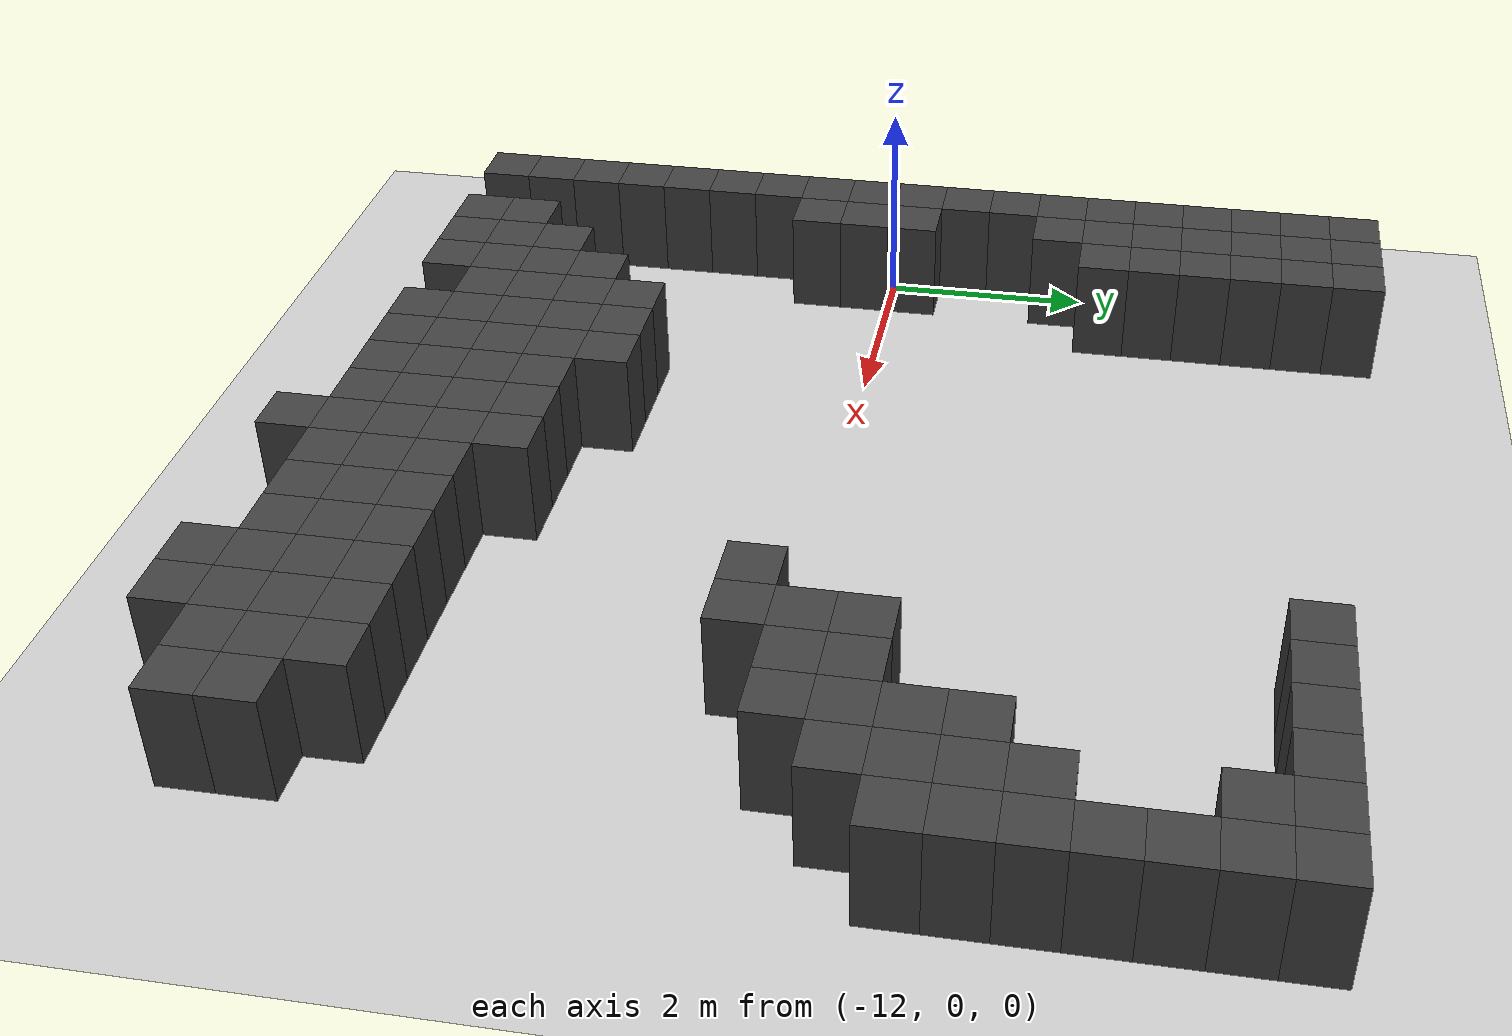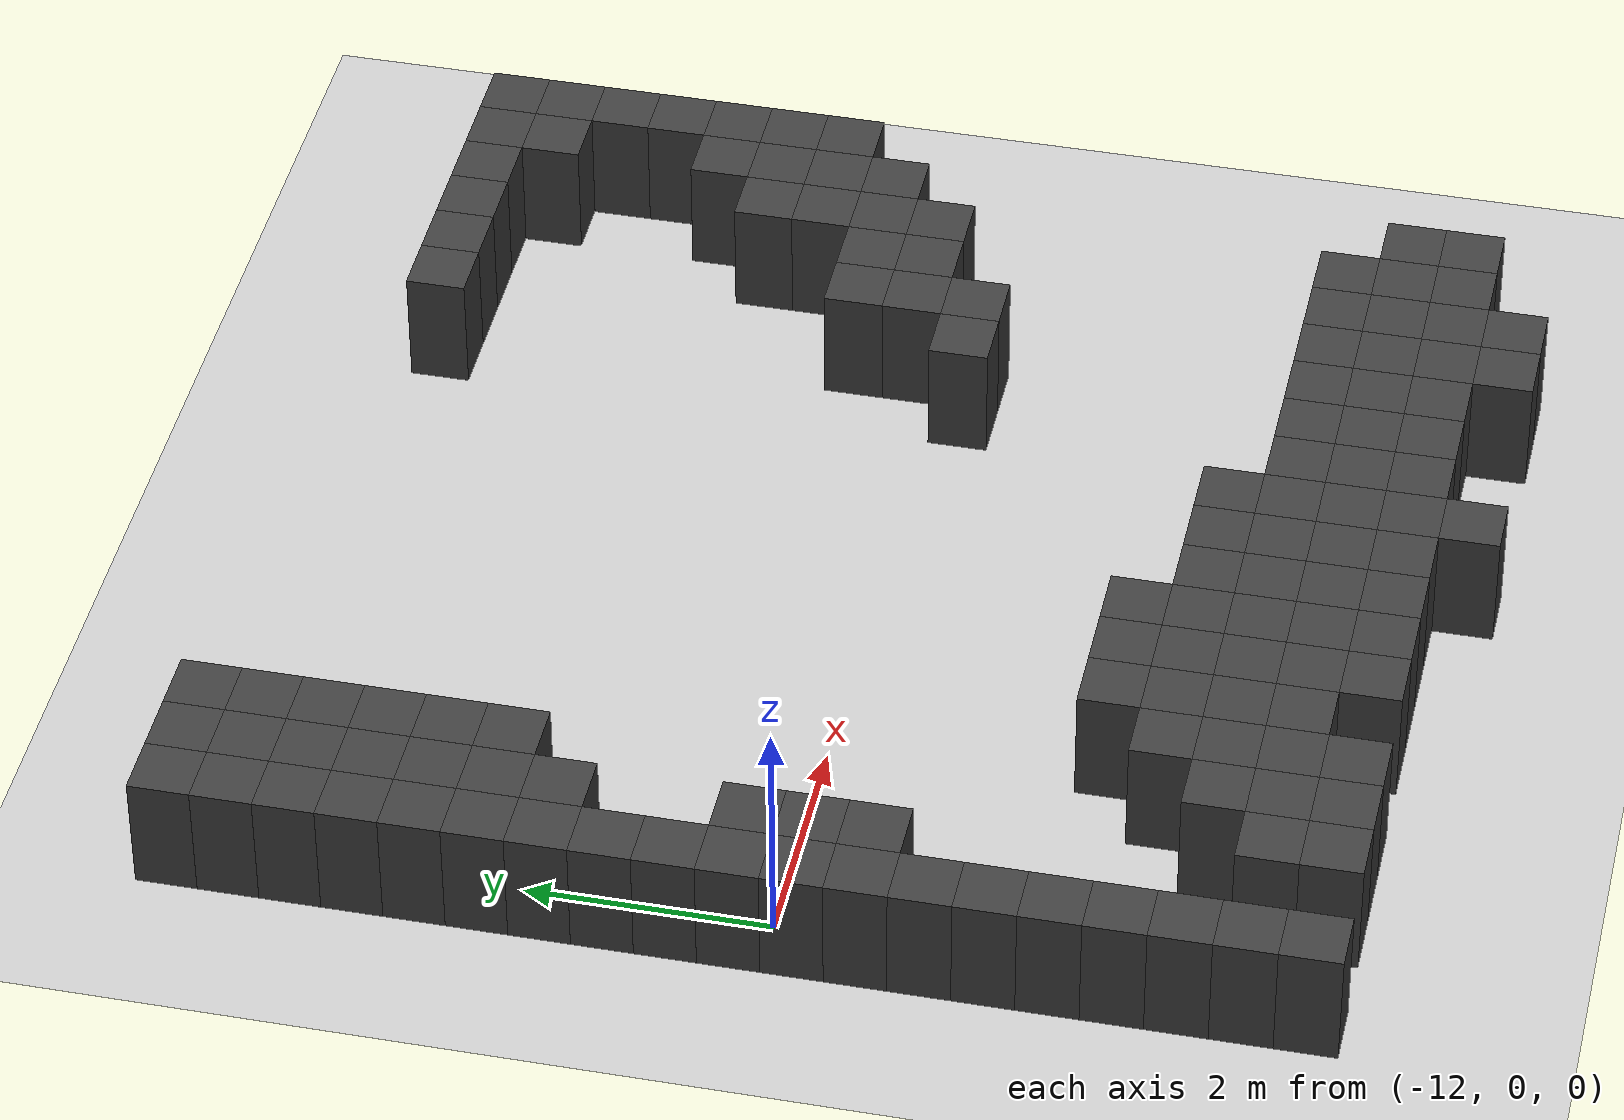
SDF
<sdf version="1.7">
 <world name="map_7372">
  <model name="ground_plane">
   <static>true</static>
   <link name="link">
    <collision name="collision">
     <geometry><plane><normal>0 0 1</normal><size>200 200</size></plane></geometry>
    </collision>
    <visual name="visual">
     <geometry><plane><normal>0 0 1</normal><size>200 200</size></plane></geometry>
     <material><ambient>0.8 0.8 0.8 1</ambient><diffuse>0.8 0.8 0.8 1</diffuse></material>
    </visual>
   </link>
  </model>
  <model name="maze_environment">
   <static>true</static>
   <link name="wall_251">
    <pose>-12.250 4.750 0.500 0 0 0</pose>
    <collision name="col"><geometry><box><size>0.5 0.5 1.0</size></box></geometry></collision>
    <visual name="vis">
     <geometry><box><size>0.5 0.5 1.0</size></box></geometry>
     <material><ambient>0.15 0.15 0.15 1</ambient><diffuse>0.25 0.25 0.25 1</diffuse></material>
    </visual>
   </link>
   <link name="wall_252">
    <pose>-11.750 4.750 0.500 0 0 0</pose>
    <collision name="col"><geometry><box><size>0.5 0.5 1.0</size></box></geometry></collision>
    <visual name="vis">
     <geometry><box><size>0.5 0.5 1.0</size></box></geometry>
     <material><ambient>0.15 0.15 0.15 1</ambient><diffuse>0.25 0.25 0.25 1</diffuse></material>
    </visual>
   </link>
   <link name="wall_253">
    <pose>-11.250 4.750 0.500 0 0 0</pose>
    <collision name="col"><geometry><box><size>0.5 0.5 1.0</size></box></geometry></collision>
    <visual name="vis">
     <geometry><box><size>0.5 0.5 1.0</size></box></geometry>
     <material><ambient>0.15 0.15 0.15 1</ambient><diffuse>0.25 0.25 0.25 1</diffuse></material>
    </visual>
   </link>
   <link name="wall_272">
    <pose>-12.250 4.250 0.500 0 0 0</pose>
    <collision name="col"><geometry><box><size>0.5 0.5 1.0</size></box></geometry></collision>
    <visual name="vis">
     <geometry><box><size>0.5 0.5 1.0</size></box></geometry>
     <material><ambient>0.15 0.15 0.15 1</ambient><diffuse>0.25 0.25 0.25 1</diffuse></material>
    </visual>
   </link>
   <link name="wall_273">
    <pose>-11.750 4.250 0.500 0 0 0</pose>
    <collision name="col"><geometry><box><size>0.5 0.5 1.0</size></box></geometry></collision>
    <visual name="vis">
     <geometry><box><size>0.5 0.5 1.0</size></box></geometry>
     <material><ambient>0.15 0.15 0.15 1</ambient><diffuse>0.25 0.25 0.25 1</diffuse></material>
    </visual>
   </link>
   <link name="wall_274">
    <pose>-11.250 4.250 0.500 0 0 0</pose>
    <collision name="col"><geometry><box><size>0.5 0.5 1.0</size></box></geometry></collision>
    <visual name="vis">
     <geometry><box><size>0.5 0.5 1.0</size></box></geometry>
     <material><ambient>0.15 0.15 0.15 1</ambient><diffuse>0.25 0.25 0.25 1</diffuse></material>
    </visual>
   </link>
   <link name="wall_275">
    <pose>-5.750 4.250 0.500 0 0 0</pose>
    <collision name="col"><geometry><box><size>0.5 0.5 1.0</size></box></geometry></collision>
    <visual name="vis">
     <geometry><box><size>0.5 0.5 1.0</size></box></geometry>
     <material><ambient>0.15 0.15 0.15 1</ambient><diffuse>0.25 0.25 0.25 1</diffuse></material>
    </visual>
   </link>
   <link name="wall_276">
    <pose>-5.250 4.250 0.500 0 0 0</pose>
    <collision name="col"><geometry><box><size>0.5 0.5 1.0</size></box></geometry></collision>
    <visual name="vis">
     <geometry><box><size>0.5 0.5 1.0</size></box></geometry>
     <material><ambient>0.15 0.15 0.15 1</ambient><diffuse>0.25 0.25 0.25 1</diffuse></material>
    </visual>
   </link>
   <link name="wall_277">
    <pose>-4.750 4.250 0.500 0 0 0</pose>
    <collision name="col"><geometry><box><size>0.5 0.5 1.0</size></box></geometry></collision>
    <visual name="vis">
     <geometry><box><size>0.5 0.5 1.0</size></box></geometry>
     <material><ambient>0.15 0.15 0.15 1</ambient><diffuse>0.25 0.25 0.25 1</diffuse></material>
    </visual>
   </link>
   <link name="wall_278">
    <pose>-4.250 4.250 0.500 0 0 0</pose>
    <collision name="col"><geometry><box><size>0.5 0.5 1.0</size></box></geometry></collision>
    <visual name="vis">
     <geometry><box><size>0.5 0.5 1.0</size></box></geometry>
     <material><ambient>0.15 0.15 0.15 1</ambient><diffuse>0.25 0.25 0.25 1</diffuse></material>
    </visual>
   </link>
   <link name="wall_279">
    <pose>-3.750 4.250 0.500 0 0 0</pose>
    <collision name="col"><geometry><box><size>0.5 0.5 1.0</size></box></geometry></collision>
    <visual name="vis">
     <geometry><box><size>0.5 0.5 1.0</size></box></geometry>
     <material><ambient>0.15 0.15 0.15 1</ambient><diffuse>0.25 0.25 0.25 1</diffuse></material>
    </visual>
   </link>
   <link name="wall_280">
    <pose>-3.250 4.250 0.500 0 0 0</pose>
    <collision name="col"><geometry><box><size>0.5 0.5 1.0</size></box></geometry></collision>
    <visual name="vis">
     <geometry><box><size>0.5 0.5 1.0</size></box></geometry>
     <material><ambient>0.15 0.15 0.15 1</ambient><diffuse>0.25 0.25 0.25 1</diffuse></material>
    </visual>
   </link>
   <link name="wall_290">
    <pose>-12.250 3.750 0.500 0 0 0</pose>
    <collision name="col"><geometry><box><size>0.5 0.5 1.0</size></box></geometry></collision>
    <visual name="vis">
     <geometry><box><size>0.5 0.5 1.0</size></box></geometry>
     <material><ambient>0.15 0.15 0.15 1</ambient><diffuse>0.25 0.25 0.25 1</diffuse></material>
    </visual>
   </link>
   <link name="wall_291">
    <pose>-11.750 3.750 0.500 0 0 0</pose>
    <collision name="col"><geometry><box><size>0.5 0.5 1.0</size></box></geometry></collision>
    <visual name="vis">
     <geometry><box><size>0.5 0.5 1.0</size></box></geometry>
     <material><ambient>0.15 0.15 0.15 1</ambient><diffuse>0.25 0.25 0.25 1</diffuse></material>
    </visual>
   </link>
   <link name="wall_292">
    <pose>-11.250 3.750 0.500 0 0 0</pose>
    <collision name="col"><geometry><box><size>0.5 0.5 1.0</size></box></geometry></collision>
    <visual name="vis">
     <geometry><box><size>0.5 0.5 1.0</size></box></geometry>
     <material><ambient>0.15 0.15 0.15 1</ambient><diffuse>0.25 0.25 0.25 1</diffuse></material>
    </visual>
   </link>
   <link name="wall_293">
    <pose>-3.750 3.750 0.500 0 0 0</pose>
    <collision name="col"><geometry><box><size>0.5 0.5 1.0</size></box></geometry></collision>
    <visual name="vis">
     <geometry><box><size>0.5 0.5 1.0</size></box></geometry>
     <material><ambient>0.15 0.15 0.15 1</ambient><diffuse>0.25 0.25 0.25 1</diffuse></material>
    </visual>
   </link>
   <link name="wall_294">
    <pose>-3.250 3.750 0.500 0 0 0</pose>
    <collision name="col"><geometry><box><size>0.5 0.5 1.0</size></box></geometry></collision>
    <visual name="vis">
     <geometry><box><size>0.5 0.5 1.0</size></box></geometry>
     <material><ambient>0.15 0.15 0.15 1</ambient><diffuse>0.25 0.25 0.25 1</diffuse></material>
    </visual>
   </link>
   <link name="wall_304">
    <pose>-12.250 3.250 0.500 0 0 0</pose>
    <collision name="col"><geometry><box><size>0.5 0.5 1.0</size></box></geometry></collision>
    <visual name="vis">
     <geometry><box><size>0.5 0.5 1.0</size></box></geometry>
     <material><ambient>0.15 0.15 0.15 1</ambient><diffuse>0.25 0.25 0.25 1</diffuse></material>
    </visual>
   </link>
   <link name="wall_305">
    <pose>-11.750 3.250 0.500 0 0 0</pose>
    <collision name="col"><geometry><box><size>0.5 0.5 1.0</size></box></geometry></collision>
    <visual name="vis">
     <geometry><box><size>0.5 0.5 1.0</size></box></geometry>
     <material><ambient>0.15 0.15 0.15 1</ambient><diffuse>0.25 0.25 0.25 1</diffuse></material>
    </visual>
   </link>
   <link name="wall_306">
    <pose>-11.250 3.250 0.500 0 0 0</pose>
    <collision name="col"><geometry><box><size>0.5 0.5 1.0</size></box></geometry></collision>
    <visual name="vis">
     <geometry><box><size>0.5 0.5 1.0</size></box></geometry>
     <material><ambient>0.15 0.15 0.15 1</ambient><diffuse>0.25 0.25 0.25 1</diffuse></material>
    </visual>
   </link>
   <link name="wall_307">
    <pose>-3.250 3.250 0.500 0 0 0</pose>
    <collision name="col"><geometry><box><size>0.5 0.5 1.0</size></box></geometry></collision>
    <visual name="vis">
     <geometry><box><size>0.5 0.5 1.0</size></box></geometry>
     <material><ambient>0.15 0.15 0.15 1</ambient><diffuse>0.25 0.25 0.25 1</diffuse></material>
    </visual>
   </link>
   <link name="wall_319">
    <pose>-12.250 2.750 0.500 0 0 0</pose>
    <collision name="col"><geometry><box><size>0.5 0.5 1.0</size></box></geometry></collision>
    <visual name="vis">
     <geometry><box><size>0.5 0.5 1.0</size></box></geometry>
     <material><ambient>0.15 0.15 0.15 1</ambient><diffuse>0.25 0.25 0.25 1</diffuse></material>
    </visual>
   </link>
   <link name="wall_320">
    <pose>-11.750 2.750 0.500 0 0 0</pose>
    <collision name="col"><geometry><box><size>0.5 0.5 1.0</size></box></geometry></collision>
    <visual name="vis">
     <geometry><box><size>0.5 0.5 1.0</size></box></geometry>
     <material><ambient>0.15 0.15 0.15 1</ambient><diffuse>0.25 0.25 0.25 1</diffuse></material>
    </visual>
   </link>
   <link name="wall_321">
    <pose>-11.250 2.750 0.500 0 0 0</pose>
    <collision name="col"><geometry><box><size>0.5 0.5 1.0</size></box></geometry></collision>
    <visual name="vis">
     <geometry><box><size>0.5 0.5 1.0</size></box></geometry>
     <material><ambient>0.15 0.15 0.15 1</ambient><diffuse>0.25 0.25 0.25 1</diffuse></material>
    </visual>
   </link>
   <link name="wall_322">
    <pose>-3.250 2.750 0.500 0 0 0</pose>
    <collision name="col"><geometry><box><size>0.5 0.5 1.0</size></box></geometry></collision>
    <visual name="vis">
     <geometry><box><size>0.5 0.5 1.0</size></box></geometry>
     <material><ambient>0.15 0.15 0.15 1</ambient><diffuse>0.25 0.25 0.25 1</diffuse></material>
    </visual>
   </link>
   <link name="wall_334">
    <pose>-12.250 2.250 0.500 0 0 0</pose>
    <collision name="col"><geometry><box><size>0.5 0.5 1.0</size></box></geometry></collision>
    <visual name="vis">
     <geometry><box><size>0.5 0.5 1.0</size></box></geometry>
     <material><ambient>0.15 0.15 0.15 1</ambient><diffuse>0.25 0.25 0.25 1</diffuse></material>
    </visual>
   </link>
   <link name="wall_335">
    <pose>-11.750 2.250 0.500 0 0 0</pose>
    <collision name="col"><geometry><box><size>0.5 0.5 1.0</size></box></geometry></collision>
    <visual name="vis">
     <geometry><box><size>0.5 0.5 1.0</size></box></geometry>
     <material><ambient>0.15 0.15 0.15 1</ambient><diffuse>0.25 0.25 0.25 1</diffuse></material>
    </visual>
   </link>
   <link name="wall_336">
    <pose>-11.250 2.250 0.500 0 0 0</pose>
    <collision name="col"><geometry><box><size>0.5 0.5 1.0</size></box></geometry></collision>
    <visual name="vis">
     <geometry><box><size>0.5 0.5 1.0</size></box></geometry>
     <material><ambient>0.15 0.15 0.15 1</ambient><diffuse>0.25 0.25 0.25 1</diffuse></material>
    </visual>
   </link>
   <link name="wall_337">
    <pose>-3.750 2.250 0.500 0 0 0</pose>
    <collision name="col"><geometry><box><size>0.5 0.5 1.0</size></box></geometry></collision>
    <visual name="vis">
     <geometry><box><size>0.5 0.5 1.0</size></box></geometry>
     <material><ambient>0.15 0.15 0.15 1</ambient><diffuse>0.25 0.25 0.25 1</diffuse></material>
    </visual>
   </link>
   <link name="wall_338">
    <pose>-3.250 2.250 0.500 0 0 0</pose>
    <collision name="col"><geometry><box><size>0.5 0.5 1.0</size></box></geometry></collision>
    <visual name="vis">
     <geometry><box><size>0.5 0.5 1.0</size></box></geometry>
     <material><ambient>0.15 0.15 0.15 1</ambient><diffuse>0.25 0.25 0.25 1</diffuse></material>
    </visual>
   </link>
   <link name="wall_352">
    <pose>-12.250 1.750 0.500 0 0 0</pose>
    <collision name="col"><geometry><box><size>0.5 0.5 1.0</size></box></geometry></collision>
    <visual name="vis">
     <geometry><box><size>0.5 0.5 1.0</size></box></geometry>
     <material><ambient>0.15 0.15 0.15 1</ambient><diffuse>0.25 0.25 0.25 1</diffuse></material>
    </visual>
   </link>
   <link name="wall_353">
    <pose>-11.750 1.750 0.500 0 0 0</pose>
    <collision name="col"><geometry><box><size>0.5 0.5 1.0</size></box></geometry></collision>
    <visual name="vis">
     <geometry><box><size>0.5 0.5 1.0</size></box></geometry>
     <material><ambient>0.15 0.15 0.15 1</ambient><diffuse>0.25 0.25 0.25 1</diffuse></material>
    </visual>
   </link>
   <link name="wall_354">
    <pose>-4.250 1.750 0.500 0 0 0</pose>
    <collision name="col"><geometry><box><size>0.5 0.5 1.0</size></box></geometry></collision>
    <visual name="vis">
     <geometry><box><size>0.5 0.5 1.0</size></box></geometry>
     <material><ambient>0.15 0.15 0.15 1</ambient><diffuse>0.25 0.25 0.25 1</diffuse></material>
    </visual>
   </link>
   <link name="wall_355">
    <pose>-3.750 1.750 0.500 0 0 0</pose>
    <collision name="col"><geometry><box><size>0.5 0.5 1.0</size></box></geometry></collision>
    <visual name="vis">
     <geometry><box><size>0.5 0.5 1.0</size></box></geometry>
     <material><ambient>0.15 0.15 0.15 1</ambient><diffuse>0.25 0.25 0.25 1</diffuse></material>
    </visual>
   </link>
   <link name="wall_356">
    <pose>-3.250 1.750 0.500 0 0 0</pose>
    <collision name="col"><geometry><box><size>0.5 0.5 1.0</size></box></geometry></collision>
    <visual name="vis">
     <geometry><box><size>0.5 0.5 1.0</size></box></geometry>
     <material><ambient>0.15 0.15 0.15 1</ambient><diffuse>0.25 0.25 0.25 1</diffuse></material>
    </visual>
   </link>
   <link name="wall_373">
    <pose>-12.250 1.250 0.500 0 0 0</pose>
    <collision name="col"><geometry><box><size>0.5 0.5 1.0</size></box></geometry></collision>
    <visual name="vis">
     <geometry><box><size>0.5 0.5 1.0</size></box></geometry>
     <material><ambient>0.15 0.15 0.15 1</ambient><diffuse>0.25 0.25 0.25 1</diffuse></material>
    </visual>
   </link>
   <link name="wall_374">
    <pose>-4.250 1.250 0.500 0 0 0</pose>
    <collision name="col"><geometry><box><size>0.5 0.5 1.0</size></box></geometry></collision>
    <visual name="vis">
     <geometry><box><size>0.5 0.5 1.0</size></box></geometry>
     <material><ambient>0.15 0.15 0.15 1</ambient><diffuse>0.25 0.25 0.25 1</diffuse></material>
    </visual>
   </link>
   <link name="wall_375">
    <pose>-3.750 1.250 0.500 0 0 0</pose>
    <collision name="col"><geometry><box><size>0.5 0.5 1.0</size></box></geometry></collision>
    <visual name="vis">
     <geometry><box><size>0.5 0.5 1.0</size></box></geometry>
     <material><ambient>0.15 0.15 0.15 1</ambient><diffuse>0.25 0.25 0.25 1</diffuse></material>
    </visual>
   </link>
   <link name="wall_376">
    <pose>-3.250 1.250 0.500 0 0 0</pose>
    <collision name="col"><geometry><box><size>0.5 0.5 1.0</size></box></geometry></collision>
    <visual name="vis">
     <geometry><box><size>0.5 0.5 1.0</size></box></geometry>
     <material><ambient>0.15 0.15 0.15 1</ambient><diffuse>0.25 0.25 0.25 1</diffuse></material>
    </visual>
   </link>
   <link name="wall_390">
    <pose>-12.250 0.750 0.500 0 0 0</pose>
    <collision name="col"><geometry><box><size>0.5 0.5 1.0</size></box></geometry></collision>
    <visual name="vis">
     <geometry><box><size>0.5 0.5 1.0</size></box></geometry>
     <material><ambient>0.15 0.15 0.15 1</ambient><diffuse>0.25 0.25 0.25 1</diffuse></material>
    </visual>
   </link>
   <link name="wall_391">
    <pose>-5.250 0.750 0.500 0 0 0</pose>
    <collision name="col"><geometry><box><size>0.5 0.5 1.0</size></box></geometry></collision>
    <visual name="vis">
     <geometry><box><size>0.5 0.5 1.0</size></box></geometry>
     <material><ambient>0.15 0.15 0.15 1</ambient><diffuse>0.25 0.25 0.25 1</diffuse></material>
    </visual>
   </link>
   <link name="wall_392">
    <pose>-4.750 0.750 0.500 0 0 0</pose>
    <collision name="col"><geometry><box><size>0.5 0.5 1.0</size></box></geometry></collision>
    <visual name="vis">
     <geometry><box><size>0.5 0.5 1.0</size></box></geometry>
     <material><ambient>0.15 0.15 0.15 1</ambient><diffuse>0.25 0.25 0.25 1</diffuse></material>
    </visual>
   </link>
   <link name="wall_393">
    <pose>-4.250 0.750 0.500 0 0 0</pose>
    <collision name="col"><geometry><box><size>0.5 0.5 1.0</size></box></geometry></collision>
    <visual name="vis">
     <geometry><box><size>0.5 0.5 1.0</size></box></geometry>
     <material><ambient>0.15 0.15 0.15 1</ambient><diffuse>0.25 0.25 0.25 1</diffuse></material>
    </visual>
   </link>
   <link name="wall_394">
    <pose>-3.750 0.750 0.500 0 0 0</pose>
    <collision name="col"><geometry><box><size>0.5 0.5 1.0</size></box></geometry></collision>
    <visual name="vis">
     <geometry><box><size>0.5 0.5 1.0</size></box></geometry>
     <material><ambient>0.15 0.15 0.15 1</ambient><diffuse>0.25 0.25 0.25 1</diffuse></material>
    </visual>
   </link>
   <link name="wall_405">
    <pose>-12.250 0.250 0.500 0 0 0</pose>
    <collision name="col"><geometry><box><size>0.5 0.5 1.0</size></box></geometry></collision>
    <visual name="vis">
     <geometry><box><size>0.5 0.5 1.0</size></box></geometry>
     <material><ambient>0.15 0.15 0.15 1</ambient><diffuse>0.25 0.25 0.25 1</diffuse></material>
    </visual>
   </link>
   <link name="wall_406">
    <pose>-11.750 0.250 0.500 0 0 0</pose>
    <collision name="col"><geometry><box><size>0.5 0.5 1.0</size></box></geometry></collision>
    <visual name="vis">
     <geometry><box><size>0.5 0.5 1.0</size></box></geometry>
     <material><ambient>0.15 0.15 0.15 1</ambient><diffuse>0.25 0.25 0.25 1</diffuse></material>
    </visual>
   </link>
   <link name="wall_407">
    <pose>-5.250 0.250 0.500 0 0 0</pose>
    <collision name="col"><geometry><box><size>0.5 0.5 1.0</size></box></geometry></collision>
    <visual name="vis">
     <geometry><box><size>0.5 0.5 1.0</size></box></geometry>
     <material><ambient>0.15 0.15 0.15 1</ambient><diffuse>0.25 0.25 0.25 1</diffuse></material>
    </visual>
   </link>
   <link name="wall_408">
    <pose>-4.750 0.250 0.500 0 0 0</pose>
    <collision name="col"><geometry><box><size>0.5 0.5 1.0</size></box></geometry></collision>
    <visual name="vis">
     <geometry><box><size>0.5 0.5 1.0</size></box></geometry>
     <material><ambient>0.15 0.15 0.15 1</ambient><diffuse>0.25 0.25 0.25 1</diffuse></material>
    </visual>
   </link>
   <link name="wall_409">
    <pose>-4.250 0.250 0.500 0 0 0</pose>
    <collision name="col"><geometry><box><size>0.5 0.5 1.0</size></box></geometry></collision>
    <visual name="vis">
     <geometry><box><size>0.5 0.5 1.0</size></box></geometry>
     <material><ambient>0.15 0.15 0.15 1</ambient><diffuse>0.25 0.25 0.25 1</diffuse></material>
    </visual>
   </link>
   <link name="wall_419">
    <pose>-12.250 -0.250 0.500 0 0 0</pose>
    <collision name="col"><geometry><box><size>0.5 0.5 1.0</size></box></geometry></collision>
    <visual name="vis">
     <geometry><box><size>0.5 0.5 1.0</size></box></geometry>
     <material><ambient>0.15 0.15 0.15 1</ambient><diffuse>0.25 0.25 0.25 1</diffuse></material>
    </visual>
   </link>
   <link name="wall_420">
    <pose>-11.750 -0.250 0.500 0 0 0</pose>
    <collision name="col"><geometry><box><size>0.5 0.5 1.0</size></box></geometry></collision>
    <visual name="vis">
     <geometry><box><size>0.5 0.5 1.0</size></box></geometry>
     <material><ambient>0.15 0.15 0.15 1</ambient><diffuse>0.25 0.25 0.25 1</diffuse></material>
    </visual>
   </link>
   <link name="wall_421">
    <pose>-5.750 -0.250 0.500 0 0 0</pose>
    <collision name="col"><geometry><box><size>0.5 0.5 1.0</size></box></geometry></collision>
    <visual name="vis">
     <geometry><box><size>0.5 0.5 1.0</size></box></geometry>
     <material><ambient>0.15 0.15 0.15 1</ambient><diffuse>0.25 0.25 0.25 1</diffuse></material>
    </visual>
   </link>
   <link name="wall_422">
    <pose>-5.250 -0.250 0.500 0 0 0</pose>
    <collision name="col"><geometry><box><size>0.5 0.5 1.0</size></box></geometry></collision>
    <visual name="vis">
     <geometry><box><size>0.5 0.5 1.0</size></box></geometry>
     <material><ambient>0.15 0.15 0.15 1</ambient><diffuse>0.25 0.25 0.25 1</diffuse></material>
    </visual>
   </link>
   <link name="wall_431">
    <pose>-12.250 -0.750 0.500 0 0 0</pose>
    <collision name="col"><geometry><box><size>0.5 0.5 1.0</size></box></geometry></collision>
    <visual name="vis">
     <geometry><box><size>0.5 0.5 1.0</size></box></geometry>
     <material><ambient>0.15 0.15 0.15 1</ambient><diffuse>0.25 0.25 0.25 1</diffuse></material>
    </visual>
   </link>
   <link name="wall_432">
    <pose>-11.750 -0.750 0.500 0 0 0</pose>
    <collision name="col"><geometry><box><size>0.5 0.5 1.0</size></box></geometry></collision>
    <visual name="vis">
     <geometry><box><size>0.5 0.5 1.0</size></box></geometry>
     <material><ambient>0.15 0.15 0.15 1</ambient><diffuse>0.25 0.25 0.25 1</diffuse></material>
    </visual>
   </link>
   <link name="wall_437">
    <pose>-12.250 -1.250 0.500 0 0 0</pose>
    <collision name="col"><geometry><box><size>0.5 0.5 1.0</size></box></geometry></collision>
    <visual name="vis">
     <geometry><box><size>0.5 0.5 1.0</size></box></geometry>
     <material><ambient>0.15 0.15 0.15 1</ambient><diffuse>0.25 0.25 0.25 1</diffuse></material>
    </visual>
   </link>
   <link name="wall_439">
    <pose>-12.250 -1.750 0.500 0 0 0</pose>
    <collision name="col"><geometry><box><size>0.5 0.5 1.0</size></box></geometry></collision>
    <visual name="vis">
     <geometry><box><size>0.5 0.5 1.0</size></box></geometry>
     <material><ambient>0.15 0.15 0.15 1</ambient><diffuse>0.25 0.25 0.25 1</diffuse></material>
    </visual>
   </link>
   <link name="wall_441">
    <pose>-12.250 -2.250 0.500 0 0 0</pose>
    <collision name="col"><geometry><box><size>0.5 0.5 1.0</size></box></geometry></collision>
    <visual name="vis">
     <geometry><box><size>0.5 0.5 1.0</size></box></geometry>
     <material><ambient>0.15 0.15 0.15 1</ambient><diffuse>0.25 0.25 0.25 1</diffuse></material>
    </visual>
   </link>
   <link name="wall_442">
    <pose>-9.750 -2.250 0.500 0 0 0</pose>
    <collision name="col"><geometry><box><size>0.5 0.5 1.0</size></box></geometry></collision>
    <visual name="vis">
     <geometry><box><size>0.5 0.5 1.0</size></box></geometry>
     <material><ambient>0.15 0.15 0.15 1</ambient><diffuse>0.25 0.25 0.25 1</diffuse></material>
    </visual>
   </link>
   <link name="wall_443">
    <pose>-9.250 -2.250 0.500 0 0 0</pose>
    <collision name="col"><geometry><box><size>0.5 0.5 1.0</size></box></geometry></collision>
    <visual name="vis">
     <geometry><box><size>0.5 0.5 1.0</size></box></geometry>
     <material><ambient>0.15 0.15 0.15 1</ambient><diffuse>0.25 0.25 0.25 1</diffuse></material>
    </visual>
   </link>
   <link name="wall_444">
    <pose>-8.750 -2.250 0.500 0 0 0</pose>
    <collision name="col"><geometry><box><size>0.5 0.5 1.0</size></box></geometry></collision>
    <visual name="vis">
     <geometry><box><size>0.5 0.5 1.0</size></box></geometry>
     <material><ambient>0.15 0.15 0.15 1</ambient><diffuse>0.25 0.25 0.25 1</diffuse></material>
    </visual>
   </link>
   <link name="wall_450">
    <pose>-12.250 -2.750 0.500 0 0 0</pose>
    <collision name="col"><geometry><box><size>0.5 0.5 1.0</size></box></geometry></collision>
    <visual name="vis">
     <geometry><box><size>0.5 0.5 1.0</size></box></geometry>
     <material><ambient>0.15 0.15 0.15 1</ambient><diffuse>0.25 0.25 0.25 1</diffuse></material>
    </visual>
   </link>
   <link name="wall_451">
    <pose>-10.250 -2.750 0.500 0 0 0</pose>
    <collision name="col"><geometry><box><size>0.5 0.5 1.0</size></box></geometry></collision>
    <visual name="vis">
     <geometry><box><size>0.5 0.5 1.0</size></box></geometry>
     <material><ambient>0.15 0.15 0.15 1</ambient><diffuse>0.25 0.25 0.25 1</diffuse></material>
    </visual>
   </link>
   <link name="wall_452">
    <pose>-9.750 -2.750 0.500 0 0 0</pose>
    <collision name="col"><geometry><box><size>0.5 0.5 1.0</size></box></geometry></collision>
    <visual name="vis">
     <geometry><box><size>0.5 0.5 1.0</size></box></geometry>
     <material><ambient>0.15 0.15 0.15 1</ambient><diffuse>0.25 0.25 0.25 1</diffuse></material>
    </visual>
   </link>
   <link name="wall_453">
    <pose>-9.250 -2.750 0.500 0 0 0</pose>
    <collision name="col"><geometry><box><size>0.5 0.5 1.0</size></box></geometry></collision>
    <visual name="vis">
     <geometry><box><size>0.5 0.5 1.0</size></box></geometry>
     <material><ambient>0.15 0.15 0.15 1</ambient><diffuse>0.25 0.25 0.25 1</diffuse></material>
    </visual>
   </link>
   <link name="wall_454">
    <pose>-8.750 -2.750 0.500 0 0 0</pose>
    <collision name="col"><geometry><box><size>0.5 0.5 1.0</size></box></geometry></collision>
    <visual name="vis">
     <geometry><box><size>0.5 0.5 1.0</size></box></geometry>
     <material><ambient>0.15 0.15 0.15 1</ambient><diffuse>0.25 0.25 0.25 1</diffuse></material>
    </visual>
   </link>
   <link name="wall_455">
    <pose>-8.250 -2.750 0.500 0 0 0</pose>
    <collision name="col"><geometry><box><size>0.5 0.5 1.0</size></box></geometry></collision>
    <visual name="vis">
     <geometry><box><size>0.5 0.5 1.0</size></box></geometry>
     <material><ambient>0.15 0.15 0.15 1</ambient><diffuse>0.25 0.25 0.25 1</diffuse></material>
    </visual>
   </link>
   <link name="wall_456">
    <pose>-7.750 -2.750 0.500 0 0 0</pose>
    <collision name="col"><geometry><box><size>0.5 0.5 1.0</size></box></geometry></collision>
    <visual name="vis">
     <geometry><box><size>0.5 0.5 1.0</size></box></geometry>
     <material><ambient>0.15 0.15 0.15 1</ambient><diffuse>0.25 0.25 0.25 1</diffuse></material>
    </visual>
   </link>
   <link name="wall_457">
    <pose>-7.250 -2.750 0.500 0 0 0</pose>
    <collision name="col"><geometry><box><size>0.5 0.5 1.0</size></box></geometry></collision>
    <visual name="vis">
     <geometry><box><size>0.5 0.5 1.0</size></box></geometry>
     <material><ambient>0.15 0.15 0.15 1</ambient><diffuse>0.25 0.25 0.25 1</diffuse></material>
    </visual>
   </link>
   <link name="wall_466">
    <pose>-12.250 -3.250 0.500 0 0 0</pose>
    <collision name="col"><geometry><box><size>0.5 0.5 1.0</size></box></geometry></collision>
    <visual name="vis">
     <geometry><box><size>0.5 0.5 1.0</size></box></geometry>
     <material><ambient>0.15 0.15 0.15 1</ambient><diffuse>0.25 0.25 0.25 1</diffuse></material>
    </visual>
   </link>
   <link name="wall_467">
    <pose>-10.750 -3.250 0.500 0 0 0</pose>
    <collision name="col"><geometry><box><size>0.5 0.5 1.0</size></box></geometry></collision>
    <visual name="vis">
     <geometry><box><size>0.5 0.5 1.0</size></box></geometry>
     <material><ambient>0.15 0.15 0.15 1</ambient><diffuse>0.25 0.25 0.25 1</diffuse></material>
    </visual>
   </link>
   <link name="wall_468">
    <pose>-10.250 -3.250 0.500 0 0 0</pose>
    <collision name="col"><geometry><box><size>0.5 0.5 1.0</size></box></geometry></collision>
    <visual name="vis">
     <geometry><box><size>0.5 0.5 1.0</size></box></geometry>
     <material><ambient>0.15 0.15 0.15 1</ambient><diffuse>0.25 0.25 0.25 1</diffuse></material>
    </visual>
   </link>
   <link name="wall_469">
    <pose>-9.750 -3.250 0.500 0 0 0</pose>
    <collision name="col"><geometry><box><size>0.5 0.5 1.0</size></box></geometry></collision>
    <visual name="vis">
     <geometry><box><size>0.5 0.5 1.0</size></box></geometry>
     <material><ambient>0.15 0.15 0.15 1</ambient><diffuse>0.25 0.25 0.25 1</diffuse></material>
    </visual>
   </link>
   <link name="wall_470">
    <pose>-9.250 -3.250 0.500 0 0 0</pose>
    <collision name="col"><geometry><box><size>0.5 0.5 1.0</size></box></geometry></collision>
    <visual name="vis">
     <geometry><box><size>0.5 0.5 1.0</size></box></geometry>
     <material><ambient>0.15 0.15 0.15 1</ambient><diffuse>0.25 0.25 0.25 1</diffuse></material>
    </visual>
   </link>
   <link name="wall_471">
    <pose>-8.750 -3.250 0.500 0 0 0</pose>
    <collision name="col"><geometry><box><size>0.5 0.5 1.0</size></box></geometry></collision>
    <visual name="vis">
     <geometry><box><size>0.5 0.5 1.0</size></box></geometry>
     <material><ambient>0.15 0.15 0.15 1</ambient><diffuse>0.25 0.25 0.25 1</diffuse></material>
    </visual>
   </link>
   <link name="wall_472">
    <pose>-8.250 -3.250 0.500 0 0 0</pose>
    <collision name="col"><geometry><box><size>0.5 0.5 1.0</size></box></geometry></collision>
    <visual name="vis">
     <geometry><box><size>0.5 0.5 1.0</size></box></geometry>
     <material><ambient>0.15 0.15 0.15 1</ambient><diffuse>0.25 0.25 0.25 1</diffuse></material>
    </visual>
   </link>
   <link name="wall_473">
    <pose>-7.750 -3.250 0.500 0 0 0</pose>
    <collision name="col"><geometry><box><size>0.5 0.5 1.0</size></box></geometry></collision>
    <visual name="vis">
     <geometry><box><size>0.5 0.5 1.0</size></box></geometry>
     <material><ambient>0.15 0.15 0.15 1</ambient><diffuse>0.25 0.25 0.25 1</diffuse></material>
    </visual>
   </link>
   <link name="wall_474">
    <pose>-7.250 -3.250 0.500 0 0 0</pose>
    <collision name="col"><geometry><box><size>0.5 0.5 1.0</size></box></geometry></collision>
    <visual name="vis">
     <geometry><box><size>0.5 0.5 1.0</size></box></geometry>
     <material><ambient>0.15 0.15 0.15 1</ambient><diffuse>0.25 0.25 0.25 1</diffuse></material>
    </visual>
   </link>
   <link name="wall_475">
    <pose>-6.750 -3.250 0.500 0 0 0</pose>
    <collision name="col"><geometry><box><size>0.5 0.5 1.0</size></box></geometry></collision>
    <visual name="vis">
     <geometry><box><size>0.5 0.5 1.0</size></box></geometry>
     <material><ambient>0.15 0.15 0.15 1</ambient><diffuse>0.25 0.25 0.25 1</diffuse></material>
    </visual>
   </link>
   <link name="wall_476">
    <pose>-6.250 -3.250 0.500 0 0 0</pose>
    <collision name="col"><geometry><box><size>0.5 0.5 1.0</size></box></geometry></collision>
    <visual name="vis">
     <geometry><box><size>0.5 0.5 1.0</size></box></geometry>
     <material><ambient>0.15 0.15 0.15 1</ambient><diffuse>0.25 0.25 0.25 1</diffuse></material>
    </visual>
   </link>
   <link name="wall_477">
    <pose>-5.750 -3.250 0.500 0 0 0</pose>
    <collision name="col"><geometry><box><size>0.5 0.5 1.0</size></box></geometry></collision>
    <visual name="vis">
     <geometry><box><size>0.5 0.5 1.0</size></box></geometry>
     <material><ambient>0.15 0.15 0.15 1</ambient><diffuse>0.25 0.25 0.25 1</diffuse></material>
    </visual>
   </link>
   <link name="wall_478">
    <pose>-5.250 -3.250 0.500 0 0 0</pose>
    <collision name="col"><geometry><box><size>0.5 0.5 1.0</size></box></geometry></collision>
    <visual name="vis">
     <geometry><box><size>0.5 0.5 1.0</size></box></geometry>
     <material><ambient>0.15 0.15 0.15 1</ambient><diffuse>0.25 0.25 0.25 1</diffuse></material>
    </visual>
   </link>
   <link name="wall_479">
    <pose>-4.750 -3.250 0.500 0 0 0</pose>
    <collision name="col"><geometry><box><size>0.5 0.5 1.0</size></box></geometry></collision>
    <visual name="vis">
     <geometry><box><size>0.5 0.5 1.0</size></box></geometry>
     <material><ambient>0.15 0.15 0.15 1</ambient><diffuse>0.25 0.25 0.25 1</diffuse></material>
    </visual>
   </link>
   <link name="wall_480">
    <pose>-4.250 -3.250 0.500 0 0 0</pose>
    <collision name="col"><geometry><box><size>0.5 0.5 1.0</size></box></geometry></collision>
    <visual name="vis">
     <geometry><box><size>0.5 0.5 1.0</size></box></geometry>
     <material><ambient>0.15 0.15 0.15 1</ambient><diffuse>0.25 0.25 0.25 1</diffuse></material>
    </visual>
   </link>
   <link name="wall_491">
    <pose>-12.250 -3.750 0.500 0 0 0</pose>
    <collision name="col"><geometry><box><size>0.5 0.5 1.0</size></box></geometry></collision>
    <visual name="vis">
     <geometry><box><size>0.5 0.5 1.0</size></box></geometry>
     <material><ambient>0.15 0.15 0.15 1</ambient><diffuse>0.25 0.25 0.25 1</diffuse></material>
    </visual>
   </link>
   <link name="wall_492">
    <pose>-11.250 -3.750 0.500 0 0 0</pose>
    <collision name="col"><geometry><box><size>0.5 0.5 1.0</size></box></geometry></collision>
    <visual name="vis">
     <geometry><box><size>0.5 0.5 1.0</size></box></geometry>
     <material><ambient>0.15 0.15 0.15 1</ambient><diffuse>0.25 0.25 0.25 1</diffuse></material>
    </visual>
   </link>
   <link name="wall_493">
    <pose>-10.750 -3.750 0.500 0 0 0</pose>
    <collision name="col"><geometry><box><size>0.5 0.5 1.0</size></box></geometry></collision>
    <visual name="vis">
     <geometry><box><size>0.5 0.5 1.0</size></box></geometry>
     <material><ambient>0.15 0.15 0.15 1</ambient><diffuse>0.25 0.25 0.25 1</diffuse></material>
    </visual>
   </link>
   <link name="wall_494">
    <pose>-10.250 -3.750 0.500 0 0 0</pose>
    <collision name="col"><geometry><box><size>0.5 0.5 1.0</size></box></geometry></collision>
    <visual name="vis">
     <geometry><box><size>0.5 0.5 1.0</size></box></geometry>
     <material><ambient>0.15 0.15 0.15 1</ambient><diffuse>0.25 0.25 0.25 1</diffuse></material>
    </visual>
   </link>
   <link name="wall_495">
    <pose>-9.750 -3.750 0.500 0 0 0</pose>
    <collision name="col"><geometry><box><size>0.5 0.5 1.0</size></box></geometry></collision>
    <visual name="vis">
     <geometry><box><size>0.5 0.5 1.0</size></box></geometry>
     <material><ambient>0.15 0.15 0.15 1</ambient><diffuse>0.25 0.25 0.25 1</diffuse></material>
    </visual>
   </link>
   <link name="wall_496">
    <pose>-9.250 -3.750 0.500 0 0 0</pose>
    <collision name="col"><geometry><box><size>0.5 0.5 1.0</size></box></geometry></collision>
    <visual name="vis">
     <geometry><box><size>0.5 0.5 1.0</size></box></geometry>
     <material><ambient>0.15 0.15 0.15 1</ambient><diffuse>0.25 0.25 0.25 1</diffuse></material>
    </visual>
   </link>
   <link name="wall_497">
    <pose>-8.750 -3.750 0.500 0 0 0</pose>
    <collision name="col"><geometry><box><size>0.5 0.5 1.0</size></box></geometry></collision>
    <visual name="vis">
     <geometry><box><size>0.5 0.5 1.0</size></box></geometry>
     <material><ambient>0.15 0.15 0.15 1</ambient><diffuse>0.25 0.25 0.25 1</diffuse></material>
    </visual>
   </link>
   <link name="wall_498">
    <pose>-8.250 -3.750 0.500 0 0 0</pose>
    <collision name="col"><geometry><box><size>0.5 0.5 1.0</size></box></geometry></collision>
    <visual name="vis">
     <geometry><box><size>0.5 0.5 1.0</size></box></geometry>
     <material><ambient>0.15 0.15 0.15 1</ambient><diffuse>0.25 0.25 0.25 1</diffuse></material>
    </visual>
   </link>
   <link name="wall_499">
    <pose>-7.750 -3.750 0.500 0 0 0</pose>
    <collision name="col"><geometry><box><size>0.5 0.5 1.0</size></box></geometry></collision>
    <visual name="vis">
     <geometry><box><size>0.5 0.5 1.0</size></box></geometry>
     <material><ambient>0.15 0.15 0.15 1</ambient><diffuse>0.25 0.25 0.25 1</diffuse></material>
    </visual>
   </link>
   <link name="wall_500">
    <pose>-7.250 -3.750 0.500 0 0 0</pose>
    <collision name="col"><geometry><box><size>0.5 0.5 1.0</size></box></geometry></collision>
    <visual name="vis">
     <geometry><box><size>0.5 0.5 1.0</size></box></geometry>
     <material><ambient>0.15 0.15 0.15 1</ambient><diffuse>0.25 0.25 0.25 1</diffuse></material>
    </visual>
   </link>
   <link name="wall_501">
    <pose>-6.750 -3.750 0.500 0 0 0</pose>
    <collision name="col"><geometry><box><size>0.5 0.5 1.0</size></box></geometry></collision>
    <visual name="vis">
     <geometry><box><size>0.5 0.5 1.0</size></box></geometry>
     <material><ambient>0.15 0.15 0.15 1</ambient><diffuse>0.25 0.25 0.25 1</diffuse></material>
    </visual>
   </link>
   <link name="wall_502">
    <pose>-6.250 -3.750 0.500 0 0 0</pose>
    <collision name="col"><geometry><box><size>0.5 0.5 1.0</size></box></geometry></collision>
    <visual name="vis">
     <geometry><box><size>0.5 0.5 1.0</size></box></geometry>
     <material><ambient>0.15 0.15 0.15 1</ambient><diffuse>0.25 0.25 0.25 1</diffuse></material>
    </visual>
   </link>
   <link name="wall_503">
    <pose>-5.750 -3.750 0.500 0 0 0</pose>
    <collision name="col"><geometry><box><size>0.5 0.5 1.0</size></box></geometry></collision>
    <visual name="vis">
     <geometry><box><size>0.5 0.5 1.0</size></box></geometry>
     <material><ambient>0.15 0.15 0.15 1</ambient><diffuse>0.25 0.25 0.25 1</diffuse></material>
    </visual>
   </link>
   <link name="wall_504">
    <pose>-5.250 -3.750 0.500 0 0 0</pose>
    <collision name="col"><geometry><box><size>0.5 0.5 1.0</size></box></geometry></collision>
    <visual name="vis">
     <geometry><box><size>0.5 0.5 1.0</size></box></geometry>
     <material><ambient>0.15 0.15 0.15 1</ambient><diffuse>0.25 0.25 0.25 1</diffuse></material>
    </visual>
   </link>
   <link name="wall_505">
    <pose>-4.750 -3.750 0.500 0 0 0</pose>
    <collision name="col"><geometry><box><size>0.5 0.5 1.0</size></box></geometry></collision>
    <visual name="vis">
     <geometry><box><size>0.5 0.5 1.0</size></box></geometry>
     <material><ambient>0.15 0.15 0.15 1</ambient><diffuse>0.25 0.25 0.25 1</diffuse></material>
    </visual>
   </link>
   <link name="wall_506">
    <pose>-4.250 -3.750 0.500 0 0 0</pose>
    <collision name="col"><geometry><box><size>0.5 0.5 1.0</size></box></geometry></collision>
    <visual name="vis">
     <geometry><box><size>0.5 0.5 1.0</size></box></geometry>
     <material><ambient>0.15 0.15 0.15 1</ambient><diffuse>0.25 0.25 0.25 1</diffuse></material>
    </visual>
   </link>
   <link name="wall_507">
    <pose>-3.750 -3.750 0.500 0 0 0</pose>
    <collision name="col"><geometry><box><size>0.5 0.5 1.0</size></box></geometry></collision>
    <visual name="vis">
     <geometry><box><size>0.5 0.5 1.0</size></box></geometry>
     <material><ambient>0.15 0.15 0.15 1</ambient><diffuse>0.25 0.25 0.25 1</diffuse></material>
    </visual>
   </link>
   <link name="wall_517">
    <pose>-12.250 -4.250 0.500 0 0 0</pose>
    <collision name="col"><geometry><box><size>0.5 0.5 1.0</size></box></geometry></collision>
    <visual name="vis">
     <geometry><box><size>0.5 0.5 1.0</size></box></geometry>
     <material><ambient>0.15 0.15 0.15 1</ambient><diffuse>0.25 0.25 0.25 1</diffuse></material>
    </visual>
   </link>
   <link name="wall_518">
    <pose>-11.250 -4.250 0.500 0 0 0</pose>
    <collision name="col"><geometry><box><size>0.5 0.5 1.0</size></box></geometry></collision>
    <visual name="vis">
     <geometry><box><size>0.5 0.5 1.0</size></box></geometry>
     <material><ambient>0.15 0.15 0.15 1</ambient><diffuse>0.25 0.25 0.25 1</diffuse></material>
    </visual>
   </link>
   <link name="wall_519">
    <pose>-10.750 -4.250 0.500 0 0 0</pose>
    <collision name="col"><geometry><box><size>0.5 0.5 1.0</size></box></geometry></collision>
    <visual name="vis">
     <geometry><box><size>0.5 0.5 1.0</size></box></geometry>
     <material><ambient>0.15 0.15 0.15 1</ambient><diffuse>0.25 0.25 0.25 1</diffuse></material>
    </visual>
   </link>
   <link name="wall_520">
    <pose>-10.250 -4.250 0.500 0 0 0</pose>
    <collision name="col"><geometry><box><size>0.5 0.5 1.0</size></box></geometry></collision>
    <visual name="vis">
     <geometry><box><size>0.5 0.5 1.0</size></box></geometry>
     <material><ambient>0.15 0.15 0.15 1</ambient><diffuse>0.25 0.25 0.25 1</diffuse></material>
    </visual>
   </link>
   <link name="wall_521">
    <pose>-9.250 -4.250 0.500 0 0 0</pose>
    <collision name="col"><geometry><box><size>0.5 0.5 1.0</size></box></geometry></collision>
    <visual name="vis">
     <geometry><box><size>0.5 0.5 1.0</size></box></geometry>
     <material><ambient>0.15 0.15 0.15 1</ambient><diffuse>0.25 0.25 0.25 1</diffuse></material>
    </visual>
   </link>
   <link name="wall_522">
    <pose>-8.750 -4.250 0.500 0 0 0</pose>
    <collision name="col"><geometry><box><size>0.5 0.5 1.0</size></box></geometry></collision>
    <visual name="vis">
     <geometry><box><size>0.5 0.5 1.0</size></box></geometry>
     <material><ambient>0.15 0.15 0.15 1</ambient><diffuse>0.25 0.25 0.25 1</diffuse></material>
    </visual>
   </link>
   <link name="wall_523">
    <pose>-8.250 -4.250 0.500 0 0 0</pose>
    <collision name="col"><geometry><box><size>0.5 0.5 1.0</size></box></geometry></collision>
    <visual name="vis">
     <geometry><box><size>0.5 0.5 1.0</size></box></geometry>
     <material><ambient>0.15 0.15 0.15 1</ambient><diffuse>0.25 0.25 0.25 1</diffuse></material>
    </visual>
   </link>
   <link name="wall_524">
    <pose>-7.750 -4.250 0.500 0 0 0</pose>
    <collision name="col"><geometry><box><size>0.5 0.5 1.0</size></box></geometry></collision>
    <visual name="vis">
     <geometry><box><size>0.5 0.5 1.0</size></box></geometry>
     <material><ambient>0.15 0.15 0.15 1</ambient><diffuse>0.25 0.25 0.25 1</diffuse></material>
    </visual>
   </link>
   <link name="wall_525">
    <pose>-7.250 -4.250 0.500 0 0 0</pose>
    <collision name="col"><geometry><box><size>0.5 0.5 1.0</size></box></geometry></collision>
    <visual name="vis">
     <geometry><box><size>0.5 0.5 1.0</size></box></geometry>
     <material><ambient>0.15 0.15 0.15 1</ambient><diffuse>0.25 0.25 0.25 1</diffuse></material>
    </visual>
   </link>
   <link name="wall_526">
    <pose>-6.750 -4.250 0.500 0 0 0</pose>
    <collision name="col"><geometry><box><size>0.5 0.5 1.0</size></box></geometry></collision>
    <visual name="vis">
     <geometry><box><size>0.5 0.5 1.0</size></box></geometry>
     <material><ambient>0.15 0.15 0.15 1</ambient><diffuse>0.25 0.25 0.25 1</diffuse></material>
    </visual>
   </link>
   <link name="wall_527">
    <pose>-6.250 -4.250 0.500 0 0 0</pose>
    <collision name="col"><geometry><box><size>0.5 0.5 1.0</size></box></geometry></collision>
    <visual name="vis">
     <geometry><box><size>0.5 0.5 1.0</size></box></geometry>
     <material><ambient>0.15 0.15 0.15 1</ambient><diffuse>0.25 0.25 0.25 1</diffuse></material>
    </visual>
   </link>
   <link name="wall_528">
    <pose>-5.750 -4.250 0.500 0 0 0</pose>
    <collision name="col"><geometry><box><size>0.5 0.5 1.0</size></box></geometry></collision>
    <visual name="vis">
     <geometry><box><size>0.5 0.5 1.0</size></box></geometry>
     <material><ambient>0.15 0.15 0.15 1</ambient><diffuse>0.25 0.25 0.25 1</diffuse></material>
    </visual>
   </link>
   <link name="wall_529">
    <pose>-5.250 -4.250 0.500 0 0 0</pose>
    <collision name="col"><geometry><box><size>0.5 0.5 1.0</size></box></geometry></collision>
    <visual name="vis">
     <geometry><box><size>0.5 0.5 1.0</size></box></geometry>
     <material><ambient>0.15 0.15 0.15 1</ambient><diffuse>0.25 0.25 0.25 1</diffuse></material>
    </visual>
   </link>
   <link name="wall_530">
    <pose>-4.750 -4.250 0.500 0 0 0</pose>
    <collision name="col"><geometry><box><size>0.5 0.5 1.0</size></box></geometry></collision>
    <visual name="vis">
     <geometry><box><size>0.5 0.5 1.0</size></box></geometry>
     <material><ambient>0.15 0.15 0.15 1</ambient><diffuse>0.25 0.25 0.25 1</diffuse></material>
    </visual>
   </link>
   <link name="wall_531">
    <pose>-4.250 -4.250 0.500 0 0 0</pose>
    <collision name="col"><geometry><box><size>0.5 0.5 1.0</size></box></geometry></collision>
    <visual name="vis">
     <geometry><box><size>0.5 0.5 1.0</size></box></geometry>
     <material><ambient>0.15 0.15 0.15 1</ambient><diffuse>0.25 0.25 0.25 1</diffuse></material>
    </visual>
   </link>
   <link name="wall_532">
    <pose>-3.750 -4.250 0.500 0 0 0</pose>
    <collision name="col"><geometry><box><size>0.5 0.5 1.0</size></box></geometry></collision>
    <visual name="vis">
     <geometry><box><size>0.5 0.5 1.0</size></box></geometry>
     <material><ambient>0.15 0.15 0.15 1</ambient><diffuse>0.25 0.25 0.25 1</diffuse></material>
    </visual>
   </link>
   <link name="wall_550">
    <pose>-7.250 -4.750 0.500 0 0 0</pose>
    <collision name="col"><geometry><box><size>0.5 0.5 1.0</size></box></geometry></collision>
    <visual name="vis">
     <geometry><box><size>0.5 0.5 1.0</size></box></geometry>
     <material><ambient>0.15 0.15 0.15 1</ambient><diffuse>0.25 0.25 0.25 1</diffuse></material>
    </visual>
   </link>
   <link name="wall_551">
    <pose>-5.250 -4.750 0.500 0 0 0</pose>
    <collision name="col"><geometry><box><size>0.5 0.5 1.0</size></box></geometry></collision>
    <visual name="vis">
     <geometry><box><size>0.5 0.5 1.0</size></box></geometry>
     <material><ambient>0.15 0.15 0.15 1</ambient><diffuse>0.25 0.25 0.25 1</diffuse></material>
    </visual>
   </link>
   <link name="wall_552">
    <pose>-4.750 -4.750 0.500 0 0 0</pose>
    <collision name="col"><geometry><box><size>0.5 0.5 1.0</size></box></geometry></collision>
    <visual name="vis">
     <geometry><box><size>0.5 0.5 1.0</size></box></geometry>
     <material><ambient>0.15 0.15 0.15 1</ambient><diffuse>0.25 0.25 0.25 1</diffuse></material>
    </visual>
   </link>
  </model>
 </world>
</sdf>
